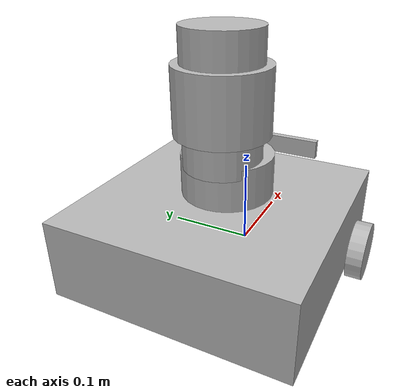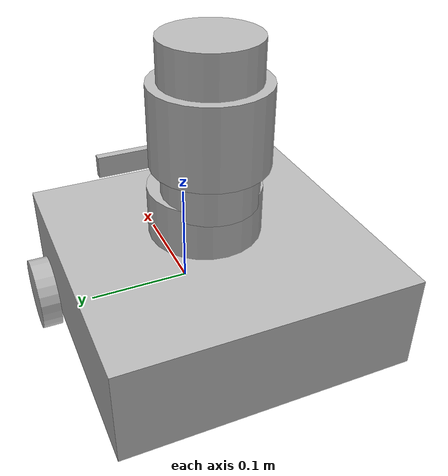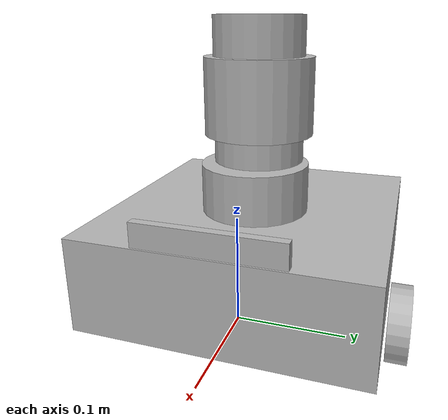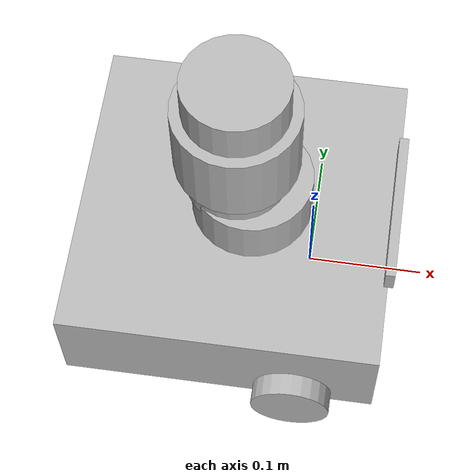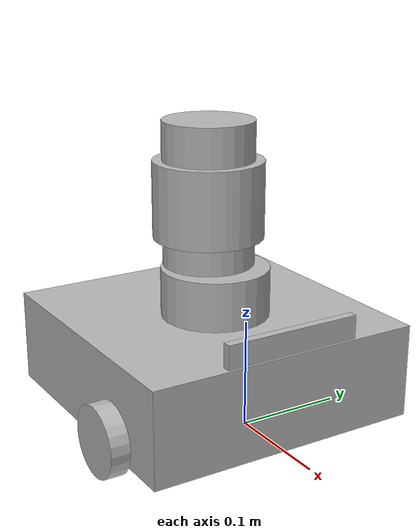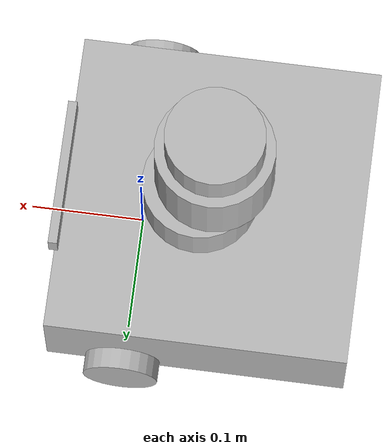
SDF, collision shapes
<?xml version="1.0" ?>
<sdf version="1.5">
  <model name="turtlebot3_waffle">
  <pose>0.0 0.0 0.0 0.0 0.0 0.0</pose>

    <link name="base_footprint"/>

    <link name="base_link">

      <inertial>
        <pose>-0.064 0 0.048 0 0 0</pose>
        <inertia>
          <ixx>4.2111447e-02</ixx>
          <ixy>0</ixy>
          <ixz>0</ixz>
          <iyy>4.2111447e-02</iyy>
          <iyz>0</iyz>
          <izz>7.5254874e-02</izz>
        </inertia>
        <mass>1.3729096e+00</mass>
      </inertial>

      <collision name="base_collision">
        <pose>-0.064 0 0.048 0 0 0</pose>
        <geometry>
          <box>
            <size>0.265 0.265 0.089</size>
          </box>
        </geometry>
      </collision>

      <visual name="base_visual">
        <pose>-0.064 0 0 0 0 0</pose>
        <geometry>
          <mesh>
            <uri>model://turtlebot3_waffle/meshes/waffle_base.dae</uri>
            <scale>0.001 0.001 0.001</scale>
          </mesh>
        </geometry>
      </visual>
    </link>

    <link name="imu_link">
      <sensor name="tb3_imu" type="imu">
        <always_on>true</always_on>
        <update_rate>200</update_rate>
        <imu>
          <angular_velocity>
            <x>
              <noise type="gaussian">
                <mean>0.0</mean>
                <stddev>2e-4</stddev>
              </noise>
            </x>
            <y>
              <noise type="gaussian">
                <mean>0.0</mean>
                <stddev>2e-4</stddev>
              </noise>
            </y>
            <z>
              <noise type="gaussian">
                <mean>0.0</mean>
                <stddev>2e-4</stddev>
              </noise>
            </z>
          </angular_velocity>
          <linear_acceleration>
            <x>
              <noise type="gaussian">
                <mean>0.0</mean>
                <stddev>1.7e-2</stddev>
              </noise>
            </x>
            <y>
              <noise type="gaussian">
                <mean>0.0</mean>
                <stddev>1.7e-2</stddev>
              </noise>
            </y>
            <z>
              <noise type="gaussian">
                <mean>0.0</mean>
                <stddev>1.7e-2</stddev>
              </noise>
            </z>
          </linear_acceleration>
        </imu>
        <plugin name="turtlebot3_imu" filename="libgazebo_ros_imu_sensor.so">
          <ros>
            <argument>~/out:=imu</argument>
          </ros>
        </plugin>
      </sensor>
    </link>

    <link name="base_scan">
      <inertial>
        <pose>-0.052 0 0.111 0 0 0</pose>
        <inertia>
          <ixx>0.001</ixx>
          <ixy>0.000</ixy>
          <ixz>0.000</ixz>
          <iyy>0.001</iyy>
          <iyz>0.000</iyz>
          <izz>0.001</izz>
        </inertia>
        <mass>0.114</mass>
      </inertial>

      <collision name="lidar_sensor_collision">
        <pose>-0.052 0 0.111 0 0 0</pose>
        <geometry>
          <cylinder>
            <radius>0.0508</radius>
            <length>0.055</length>
          </cylinder>
        </geometry>
      </collision>

      <visual name="lidar_sensor_visual">
        <pose>-0.064 0 0.121 0 0 0</pose>
        <geometry>
          <mesh>
            <uri>model://turtlebot3_waffle/meshes/lds.dae</uri>
            <scale>0.001 0.001 0.001</scale>
          </mesh>
        </geometry>
      </visual>

      <sensor name="hls_lfcd_lds" type="ray">
        <always_on>true</always_on>
        <visualize>true</visualize>
        <pose>-0.064 0 0.121 0 0 0</pose>
        <update_rate>5</update_rate>
        <ray>
          <scan>
            <horizontal>
              <samples>360</samples>
              <resolution>1.000000</resolution>
              <min_angle>0.000000</min_angle>
              <max_angle>6.280000</max_angle>
            </horizontal>
          </scan>
          <range>
            <min>0.120000</min>
            <max>3.5</max>
            <resolution>0.015000</resolution>
          </range>
          <noise>
            <type>gaussian</type>
            <mean>0.0</mean>
            <stddev>0.01</stddev>
          </noise>
        </ray>
        <plugin name="turtlebot3_laserscan" filename="libgazebo_ros_ray_sensor.so">
          <ros>
            <argument>~/out:=scan_in</argument>
          </ros>
          <output_type>sensor_msgs/LaserScan</output_type>
          <frame_name>base_scan</frame_name>
        </plugin>
      </sensor>
    </link>

    <!-- ADDED VELODYNE -->
    <!-- VLP16 -->
    <link name="velodyne_base_link">
      <inertial>
        <mass>0.83</mass>
        <pose>0 0 0.03585 0 0 0</pose>
        <inertia>
          <ixx>0.000908059425</ixx>
          <ixy>0</ixy>
          <ixz>0</ixz>
          <iyy>0.000908059425</iyy>
          <iyz>0</iyz>
          <izz>0.0011049624</izz>
        </inertia>
      </inertial>
      <visual name="velodyne_base_link_visual_1">
        <pose>-0.064 0 0.2 0 0 0</pose>
        <geometry>
          <mesh>
            <scale>1 1 1</scale>
            <uri>model://turtlebot3_gazebo/models/turtlebot3_waffle/meshes/VLP16_base_1.dae</uri>
          </mesh>
        </geometry>
      </visual>
      <visual name="velodyne_base_link_visual_2">
        <pose>-0.064 0 0.2 0 0 0</pose>
        <geometry>
          <mesh>
            <scale>1 1 1</scale>
            <uri>model://turtlebot3_gazebo/models/turtlebot3_waffle/meshes/VLP16_base_2.dae</uri>
          </mesh>
        </geometry>
      </visual>
      <collision name="velodyne_base_link_collision">
        <pose>-0.064 0 0.2 0 0 0</pose>
        <geometry>
          <cylinder>
            <length>0.0717</length>
            <radius>0.0516</radius>
          </cylinder>
        </geometry>
      </collision>
    </link>

    <joint name="velodyne_base_mount_joint" type="fixed">
      <parent>base_link</parent>
      <child>velodyne_base_link</child>
      <pose>-0.064 0 0.2 0 0 0</pose>
    </joint>

    <link name="velodyne">
      <inertial>
        <mass>0.01</mass>
        <pose>0 0 0 0 0 0</pose>
        <inertia>
          <ixx>1e-7</ixx>
          <ixy>0</ixy>
          <ixz>0</ixz>
          <iyy>1e-7</iyy>
          <iyz>0</iyz>
          <izz>1e-7</izz>
        </inertia>
      </inertial>
      <visual name="velodyne_visual">
        <pose>-0.064 0 0.2 0 0 0</pose>
        <geometry>
          <mesh>
            <scale>1 1 1</scale>
            <uri>model://turtlebot3_gazebo/models/turtlebot3_waffle/meshes/VLP16_scan.dae</uri>
          </mesh>
        </geometry>
      </visual>
      <collision name="velodyne_collision">
        <pose>-0.064 0 0.2 0 0 0</pose>
        <geometry>
          <sphere>
            <radius>0</radius>
          </sphere>
        </geometry>
      </collision>
      <sensor name="velodyne-VLP16" type="ray">
        <pose>-0.064 0 0.2 0 0 0</pose>
        <visualize>false</visualize>
        <update_rate>10</update_rate>
        <ray>
          <scan>
            <horizontal>
              <samples>440</samples>
              <resolution>1</resolution>
              <min_angle>-3.141592653589793</min_angle>
              <max_angle>3.141592653589793</max_angle>
            </horizontal>
            <vertical>
              <samples>16</samples>
              <resolution>1</resolution>
              <min_angle>-0.2617993877991494</min_angle>
              <max_angle> 0.2617993877991494</max_angle>
            </vertical>
          </scan>
          <range>
            <min>0.3</min>
            <max>131.0</max>
            <resolution>0.001</resolution>
          </range>
          <noise>
            <type>gaussian</type>
            <mean>0.0</mean>
            <stddev>0.0</stddev>
          </noise>
        </ray>
        <plugin filename="libgazebo_ros_velodyne_laser.so" name="gazebo_ros_laser_controller">
          <ros>
            <namespace>/velodyne</namespace>
            <remapping>~/out:=/velodyne_points</remapping>
          </ros>
          <tf_prefix></tf_prefix>
          <frame_name>velodyne</frame_name>
          <organize_cloud>False</organize_cloud>
          <min_range>0.1</min_range>
          <max_range>60.0</max_range>
          <gaussian_noise>0.008</gaussian_noise>
        </plugin>
      </sensor>
    </link>

    <joint name="velodyne_base_scan_joint" type="fixed">
      <parent>velodyne_base_link</parent>
      <child>velodyne</child>
      <pose>0 0 0.0377 0 0 0</pose>
    </joint>

    <!-- HDL32E -->
    <link name="velodyne2_base_link">
      <inertial>
        <mass>1.0</mass>
        <pose>0 0 0.07212 0 0 0</pose>
        <inertia>
          <ixx>0.002188947025</ixx>
          <ixy>0</ixy>
          <ixz>0</ixz>
          <iyy>0.002188947025</iyy>
          <iyz>0</iyz>
          <izz>0.00091036445</izz>
        </inertia>
      </inertial>
      <visual name="velodyne2_base_link_visual">
        <pose>-0.064 0 0.3 0 0 0</pose>
        <geometry>
          <mesh>
            <scale>1 1 1</scale>
            <uri>model://turtlebot3_gazebo/models/turtlebot3_waffle/meshes/HDL32E_base.dae</uri>
          </mesh>
        </geometry>
      </visual>
      <collision name="velodyne2_base_link_collision">
        <pose>-0.064 0 0.2 0 0 0</pose>
        <geometry>
          <cylinder>
            <length>0.14424</length>
            <radius>0.04267</radius>
          </cylinder>
        </geometry>
      </collision>
    </link>

    <joint name="velodyne2_base_mount_joint" type="fixed">
      <parent>base_link</parent>
      <child>velodyne2_base_link</child>
      <pose>-0.064 0 0.3 0 0 0</pose>
    </joint>

    <link name="velodyne2">
      <inertial>
        <mass>0.01</mass>
        <pose>0 0 0 0 0 0</pose>
        <inertia>
          <ixx>1e-7</ixx>
          <ixy>0</ixy>
          <ixz>0</ixz>
          <iyy>1e-7</iyy>
          <iyz>0</iyz>
          <izz>1e-7</izz>
        </inertia>
      </inertial>
      <visual name="velodyne2_visual">
        <pose>-0.064 0 0.3 0 0 0</pose>
        <geometry>
          <mesh>
            <scale>1 1 1</scale>
            <uri>model://turtlebot3_gazebo/models/turtlebot3_waffle/meshes/HDL32E_scan.dae</uri>
          </mesh>
        </geometry>
      </visual>
      <collision name="velodyne2_collision">
        <pose>-0.064 0 0.2 0 0 0</pose>
        <geometry>
          <sphere>
            <radius>0</radius>
          </sphere>
        </geometry>
      </collision>
      <sensor name="velodyne2-HDL32E" type="ray">
        <pose>-0.064 0 0.2 0 0 0</pose>
        <visualize>false</visualize>
        <update_rate>10</update_rate>
        <ray>
          <scan>
            <horizontal>
              <samples>220</samples>
              <resolution>1</resolution>
              <min_angle>-3.141592653589793</min_angle>
              <max_angle>3.141592653589793</max_angle>
            </horizontal>
            <vertical>
              <samples>32</samples>
              <resolution>1</resolution>
              <min_angle>-0.5352924815866609</min_angle>
              <max_angle> 0.18622663118779495</max_angle>
            </vertical>
          </scan>
          <range>
            <min>0.3</min>
            <max>131.0</max>
            <resolution>0.001</resolution>
          </range>
          <noise>
            <type>gaussian</type>
            <mean>0.0</mean>
            <stddev>0.0</stddev>
          </noise>
        </ray>
        <plugin filename="libgazebo_ros_velodyne_laser.so" name="gazebo_ros_laser_controller">
          <ros>
            <namespace>/velodyne2</namespace>
            <remapping>~/out:=/velodyne_points2</remapping>
          </ros>
          <tf_prefix></tf_prefix>
          <frame_name>velodyne2</frame_name>
          <organize_cloud>False</organize_cloud>
          <min_range>0.1</min_range>
          <max_range>130.0</max_range>
          <gaussian_noise>0.008</gaussian_noise>
        </plugin>
      </sensor>
    </link>

    <joint name="velodyne2_base_scan_joint" type="fixed">
      <parent>velodyne2_base_link</parent>
      <child>velodyne2</child>
      <pose>0 0 0.09081 0 0 0</pose>
    </joint>
    <!-- VELODYNE END -->

    <link name="wheel_left_link">

      <inertial>
        <pose>0.0 0.144 0.023 -1.57 0 0</pose>
        <inertia>
          <ixx>1.1175580e-05</ixx>
          <ixy>-4.2369783e-11</ixy>
          <ixz>-5.9381719e-09</ixz>
          <iyy>1.1192413e-05</iyy>
          <iyz>-1.4400107e-11</iyz>
          <izz>2.0712558e-05</izz>
        </inertia>
        <mass>0.1</mass>
      </inertial>

      <collision name="wheel_left_collision">
        <pose>0.0 0.144 0.023 -1.57 0 0</pose>
        <geometry>
          <cylinder>
            <radius>0.033</radius>
            <length>0.018</length>
          </cylinder>
        </geometry>
        <surface>
          <!-- This friction pamareter don't contain reliable data!! -->
          <friction>
            <ode>
              <mu>100000.0</mu>
              <mu2>100000.0</mu2>
              <fdir1>0 0 0</fdir1>
              <slip1>0.0</slip1>
              <slip2>0.0</slip2>
            </ode>
          </friction>
          <contact>
            <ode>
              <soft_cfm>0</soft_cfm>
              <soft_erp>0.2</soft_erp>
              <kp>1e+5</kp>
              <kd>1</kd>
              <max_vel>0.01</max_vel>
              <min_depth>0.001</min_depth>
            </ode>
          </contact>
        </surface>
      </collision>

      <visual name="wheel_left_visual">
        <pose>0.0 0.144 0.023 0 0 0</pose>
        <geometry>
          <mesh>
            <uri>model://turtlebot3_waffle/meshes/left_tire.dae</uri>
            <scale>0.001 0.001 0.001</scale>
          </mesh>
        </geometry>
      </visual>
    </link>

    <link name="wheel_right_link">

      <inertial>
        <pose>0.0 -0.144 0.023 -1.57 0 0</pose>
        <inertia>
          <ixx>1.1175580e-05</ixx>
          <ixy>-4.2369783e-11</ixy>
          <ixz>-5.9381719e-09</ixz>
          <iyy>1.1192413e-05</iyy>
          <iyz>-1.4400107e-11</iyz>
          <izz>2.0712558e-05</izz>
        </inertia>
        <mass>0.1</mass>
      </inertial>

      <collision name="wheel_right_collision">
        <pose>0.0 -0.144 0.023 -1.57 0 0</pose>
        <geometry>
          <cylinder>
            <radius>0.033</radius>
            <length>0.018</length>
          </cylinder>
        </geometry>
        <surface>
          <!-- This friction pamareter don't contain reliable data!! -->
          <friction>
            <ode>
              <mu>100000.0</mu>
              <mu2>100000.0</mu2>
              <fdir1>0 0 0</fdir1>
              <slip1>0.0</slip1>
              <slip2>0.0</slip2>
            </ode>
          </friction>
          <contact>
            <ode>
              <soft_cfm>0</soft_cfm>
              <soft_erp>0.2</soft_erp>
              <kp>1e+5</kp>
              <kd>1</kd>
              <max_vel>0.01</max_vel>
              <min_depth>0.001</min_depth>
            </ode>
          </contact>
        </surface>
      </collision>

      <visual name="wheel_right_visual">
        <pose>0.0 -0.144 0.023 0 0 0</pose>
        <geometry>
          <mesh>
            <uri>model://turtlebot3_waffle/meshes/right_tire.dae</uri>
            <scale>0.001 0.001 0.001</scale>
          </mesh>
        </geometry>
      </visual>
    </link>

    <link name='caster_back_right_link'>
      <pose>-0.177 -0.064 -0.004 -1.57 0 0</pose>
      <inertial>
        <mass>0.001</mass>
        <inertia>
          <ixx>0.00001</ixx>
          <ixy>0.000</ixy>
          <ixz>0.000</ixz>
          <iyy>0.00001</iyy>
          <iyz>0.000</iyz>
          <izz>0.00001</izz>
        </inertia>
      </inertial>
      <collision name='collision'>
        <geometry>
          <sphere>
            <radius>0.005000</radius>
          </sphere>
        </geometry>
        <surface>
          <contact>
            <ode>
              <soft_cfm>0</soft_cfm>
              <soft_erp>0.2</soft_erp>
              <kp>1e+5</kp>
              <kd>1</kd>
              <max_vel>0.01</max_vel>
              <min_depth>0.001</min_depth>
            </ode>
          </contact>
        </surface>
      </collision>
    </link>

    <link name='caster_back_left_link'>
      <pose>-0.177 0.064 -0.004 -1.57 0 0</pose>
      <inertial>
        <mass>0.001</mass>
        <inertia>
          <ixx>0.00001</ixx>
          <ixy>0.000</ixy>
          <ixz>0.000</ixz>
          <iyy>0.00001</iyy>
          <iyz>0.000</iyz>
          <izz>0.00001</izz>
        </inertia>
      </inertial>
      <collision name='collision'>
        <geometry>
          <sphere>
            <radius>0.005000</radius>
          </sphere>
        </geometry>
        <surface>
          <contact>
            <ode>
              <soft_cfm>0</soft_cfm>
              <soft_erp>0.2</soft_erp>
              <kp>1e+5</kp>
              <kd>1</kd>
              <max_vel>0.01</max_vel>
              <min_depth>0.001</min_depth>
            </ode>
          </contact>
        </surface>
      </collision>
    </link>

    <link name="realsense_link">
      <inertial>
        <pose>0.069 -0.047 0.107 0 0 0</pose>
        <inertia>
          <ixx>0.001</ixx>
          <ixy>0.000</ixy>
          <ixz>0.000</ixz>
          <iyy>0.001</iyy>
          <iyz>0.000</iyz>
          <izz>0.001</izz>
        </inertia>
        <mass>0.035</mass>
      </inertial>

      <collision name="collision">
        <pose>0 0.047 0 0 0 0</pose>
        <geometry>
          <box>
            <size>0.008 0.130 0.022</size>
          </box>
        </geometry>
      </collision>
      <pose>0.069 -0.047 0.107 0 0 0</pose>

      <sensor name="intel_realsense_r200_depth" type="depth">
        <always_on>1</always_on>
        <update_rate>1</update_rate>
        <pose>0.064 -0.047 0.107 0 0 0</pose>
        <camera name="realsense_depth_camera">
        </camera>
	        <plugin name="intel_realsense_r200_depth_driver" filename="libgazebo_ros_camera.so">
            <ros>
            </ros>
            <camera_name>intel_realsense_r200_depth</camera_name>
            <frame_name>realsense_depth_frame</frame_name>
            <hack_baseline>0.07</hack_baseline>
            <min_depth>0.001</min_depth>
          </plugin>
      </sensor>

      <sensor name="intel_realsense_r200_rgb" type="camera">
        <always_on>true</always_on>
        <visualize>true</visualize>
        <update_rate>30</update_rate>
	      <pose>0.064 -0.047 0.107 0 0 0</pose>
        <camera name="realsense_rgb_camera">
          <horizontal_fov>1.02974</horizontal_fov>
          <image>
            <width>1920</width>
            <height>1080</height>
            <format>R8G8B8</format>
          </image>
          <clip>
            <near>0.02</near>
            <far>300</far>
          </clip>
          <noise>
            <type>gaussian</type>
            <mean>0.0</mean>
            <stddev>0.007</stddev>
          </noise>
        </camera>
          <plugin name="intel_realsense_r200_rgb_driver" filename="libgazebo_ros_camera.so">
            <ros>
            </ros>
            <camera_name>intel_realsense_r200_rgb</camera_name>
            <frame_name>realsense_rgb_frame</frame_name>
            <hack_baseline>0.07</hack_baseline>
          </plugin>
      </sensor>
    </link>

    <joint name="base_joint" type="fixed">
      <parent>base_footprint</parent>
      <child>base_link</child>
      <pose>0.0 0.0 0.010 0 0 0</pose>
    </joint>

    <joint name="wheel_left_joint" type="revolute">
      <parent>base_link</parent>
      <child>wheel_left_link</child>
      <pose>0.0 0.144 0.023 -1.57 0 0</pose>
      <axis>
        <xyz>0 0 1</xyz>
      </axis>
    </joint>

    <joint name="wheel_right_joint" type="revolute">
      <parent>base_link</parent>
      <child>wheel_right_link</child>
      <pose>0.0 -0.144 0.023 -1.57 0 0</pose>
      <axis>
        <xyz>0 0 1</xyz>
      </axis>
    </joint>

    <joint name='caster_back_right_joint' type='ball'>
      <parent>base_link</parent>
      <child>caster_back_right_link</child>
    </joint>

    <joint name='caster_back_left_joint' type='ball'>
      <parent>base_link</parent>
      <child>caster_back_left_link</child>
    </joint>

    <joint name="lidar_joint" type="fixed">
      <parent>base_link</parent>
      <child>base_scan</child>
      <pose>-0.064 0 0.121 0 0 0</pose>
      <axis>
        <xyz>0 0 1</xyz>
      </axis>
    </joint>

    <joint name="camera_joint" type="fixed">
      <parent>base_link</parent>
      <child>realsense_link</child>
    </joint>

    <plugin name="turtlebot3_diff_drive" filename="libgazebo_ros_diff_drive.so">

      <ros>
      </ros>

      <update_rate>30</update_rate>

      <!-- wheels -->
      <left_joint>wheel_left_joint</left_joint>
      <right_joint>wheel_right_joint</right_joint>

      <!-- kinematics -->
      <wheel_separation>0.287</wheel_separation>
      <wheel_diameter>0.066</wheel_diameter>

      <!-- limits -->
      <max_wheel_torque>20</max_wheel_torque>
      <max_wheel_acceleration>1.0</max_wheel_acceleration>

      <command_topic>cmd_vel</command_topic>

      <!-- output -->
      <publish_odom>true</publish_odom>
      <publish_odom_tf>true</publish_odom_tf>
      <publish_wheel_tf>false</publish_wheel_tf>

      <odometry_topic>odom</odometry_topic>
      <odometry_frame>odom</odometry_frame>
      <robot_base_frame>base_footprint</robot_base_frame>

    </plugin>

    <plugin name="turtlebot3_joint_state" filename="libgazebo_ros_joint_state_publisher.so">
      <ros>
        <argument>~/out:=joint_states</argument>
      </ros>
      <update_rate>30</update_rate>
      <joint_name>wheel_left_joint</joint_name>
      <joint_name>wheel_right_joint</joint_name>
    </plugin>

  </model>
</sdf>
